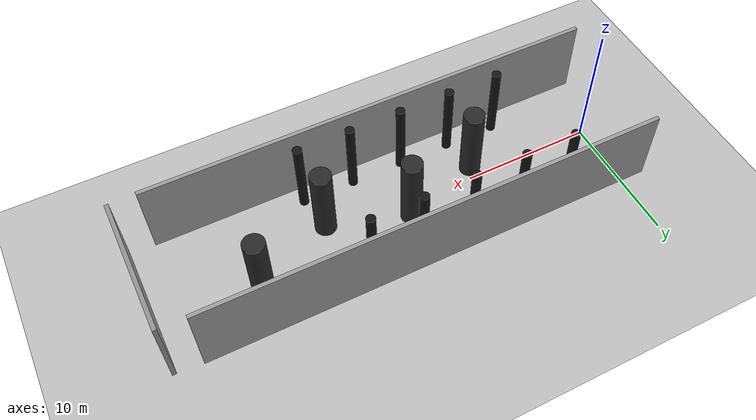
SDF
<sdf version="1.9">
 <world name="obstacle_demo">
  <physics type="ode">
   <max_step_size>0.004</max_step_size>
   <real_time_factor>1.0</real_time_factor>
   <real_time_update_rate>250</real_time_update_rate>
  </physics>
  <plugin name="gz::sim::systems::Physics" filename="gz-sim-physics-system"/>
  <plugin name="gz::sim::systems::UserCommands" filename="gz-sim-user-commands-system"/>
  <plugin name="gz::sim::systems::SceneBroadcaster" filename="gz-sim-scene-broadcaster-system"/>
  <plugin name="gz::sim::systems::Contact" filename="gz-sim-contact-system"/>
  <plugin name="gz::sim::systems::Imu" filename="gz-sim-imu-system"/>
  <plugin name="gz::sim::systems::AirPressure" filename="gz-sim-air-pressure-system"/>
  <plugin name="gz::sim::systems::NavSat" filename="gz-sim-navsat-system"/>
  <plugin name="gz::sim::systems::Sensors" filename="gz-sim-sensors-system">
   <render_engine>ogre2</render_engine>
  </plugin>
  <gravity>0 0 -9.8</gravity>
  <magnetic_field>6e-06 2.3e-05 -4.2e-05</magnetic_field>
  <atmosphere type="adiabatic"/>
  <scene>
   <grid>false</grid>
   <ambient>0.7 0.7 0.7 1</ambient>
   <background>0.82 0.85 0.9 1</background>
   <shadows>false</shadows>
  </scene>
  <model name="ground_plane">
   <static>true</static>
   <link name="link">
    <collision name="collision">
     <geometry><plane><normal>0 0 1</normal><size>1 1</size></plane></geometry>
    </collision>
    <visual name="visual">
     <geometry><plane><normal>0 0 1</normal><size>120 120</size></plane></geometry>
     <material><ambient>0.75 0.75 0.75 1</ambient><diffuse>0.75 0.75 0.75 1</diffuse></material>
    </visual>
   </link>
  </model>
  <light name="sun" type="directional">
   <pose>0 0 200 0 0 0</pose>
   <cast_shadows>false</cast_shadows>
   <intensity>1.0</intensity>
   <direction>-0.3 0.15 -0.94</direction>
   <diffuse>0.95 0.95 0.95 1</diffuse>
   <specular>0.2 0.2 0.2 1</specular>
   <attenuation><range>2000</range><constant>1</constant><linear>0</linear><quadratic>0</quadratic></attenuation>
  </light>
  <model name="corridor_wall_left">
   <static>true</static>
   <pose>15.50 5.20 3.00 0 0 0</pose>
   <link name="link">
    <collision name="collision"><geometry><box><size>35.00 0.30 6.00</size></box></geometry></collision>
    <visual name="visual">
     <geometry><box><size>35.00 0.30 6.00</size></box></geometry>
     <material><ambient>0.62 0.62 0.62 1</ambient><diffuse>0.62 0.62 0.62 1</diffuse></material>
    </visual>
   </link>
  </model>
  <model name="corridor_wall_right">
   <static>true</static>
   <pose>15.50 -5.20 3.00 0 0 0</pose>
   <link name="link">
    <collision name="collision"><geometry><box><size>35.00 0.30 6.00</size></box></geometry></collision>
    <visual name="visual">
     <geometry><box><size>35.00 0.30 6.00</size></box></geometry>
     <material><ambient>0.62 0.62 0.62 1</ambient><diffuse>0.62 0.62 0.62 1</diffuse></material>
    </visual>
   </link>
  </model>
  <model name="corridor_wall_end">
   <static>true</static>
   <pose>35.00 0.00 3.00 0 0 0</pose>
   <link name="link">
    <collision name="collision"><geometry><box><size>0.30 10.40 6.00</size></box></geometry></collision>
    <visual name="visual">
     <geometry><box><size>0.30 10.40 6.00</size></box></geometry>
     <material><ambient>0.58 0.58 0.58 1</ambient><diffuse>0.58 0.58 0.58 1</diffuse></material>
    </visual>
   </link>
  </model>
  <model name="pole_01">
   <static>true</static>
   <pose>4.00 3.75 3.00 0 0 0</pose>
   <link name="link">
    <collision name="collision">
     <geometry><cylinder><radius>0.35</radius><length>6.00</length></cylinder></geometry>
    </collision>
    <visual name="visual">
     <geometry><cylinder><radius>0.35</radius><length>6.00</length></cylinder></geometry>
     <material><ambient>0.08 0.08 0.08 1</ambient><diffuse>0.08 0.08 0.08 1</diffuse></material>
    </visual>
   </link>
  </model>
  <model name="pole_02">
   <static>true</static>
   <pose>8.00 3.75 3.00 0 0 0</pose>
   <link name="link">
    <collision name="collision">
     <geometry><cylinder><radius>0.35</radius><length>6.00</length></cylinder></geometry>
    </collision>
    <visual name="visual">
     <geometry><cylinder><radius>0.35</radius><length>6.00</length></cylinder></geometry>
     <material><ambient>0.08 0.08 0.08 1</ambient><diffuse>0.08 0.08 0.08 1</diffuse></material>
    </visual>
   </link>
  </model>
  <model name="pole_03">
   <static>true</static>
   <pose>12.00 3.75 3.00 0 0 0</pose>
   <link name="link">
    <collision name="collision">
     <geometry><cylinder><radius>0.35</radius><length>6.00</length></cylinder></geometry>
    </collision>
    <visual name="visual">
     <geometry><cylinder><radius>0.35</radius><length>6.00</length></cylinder></geometry>
     <material><ambient>0.08 0.08 0.08 1</ambient><diffuse>0.08 0.08 0.08 1</diffuse></material>
    </visual>
   </link>
  </model>
  <model name="pole_04">
   <static>true</static>
   <pose>16.00 3.75 3.00 0 0 0</pose>
   <link name="link">
    <collision name="collision">
     <geometry><cylinder><radius>0.35</radius><length>6.00</length></cylinder></geometry>
    </collision>
    <visual name="visual">
     <geometry><cylinder><radius>0.35</radius><length>6.00</length></cylinder></geometry>
     <material><ambient>0.08 0.08 0.08 1</ambient><diffuse>0.08 0.08 0.08 1</diffuse></material>
    </visual>
   </link>
  </model>
  <model name="pole_05">
   <static>true</static>
   <pose>20.00 3.75 3.00 0 0 0</pose>
   <link name="link">
    <collision name="collision">
     <geometry><cylinder><radius>0.35</radius><length>6.00</length></cylinder></geometry>
    </collision>
    <visual name="visual">
     <geometry><cylinder><radius>0.35</radius><length>6.00</length></cylinder></geometry>
     <material><ambient>0.08 0.08 0.08 1</ambient><diffuse>0.08 0.08 0.08 1</diffuse></material>
    </visual>
   </link>
  </model>
  <model name="pole_06">
   <static>true</static>
   <pose>6.00 -3.75 3.00 0 0 0</pose>
   <link name="link">
    <collision name="collision">
     <geometry><cylinder><radius>0.35</radius><length>6.00</length></cylinder></geometry>
    </collision>
    <visual name="visual">
     <geometry><cylinder><radius>0.35</radius><length>6.00</length></cylinder></geometry>
     <material><ambient>0.08 0.08 0.08 1</ambient><diffuse>0.08 0.08 0.08 1</diffuse></material>
    </visual>
   </link>
  </model>
  <model name="pole_07">
   <static>true</static>
   <pose>10.00 -3.75 3.00 0 0 0</pose>
   <link name="link">
    <collision name="collision">
     <geometry><cylinder><radius>0.35</radius><length>6.00</length></cylinder></geometry>
    </collision>
    <visual name="visual">
     <geometry><cylinder><radius>0.35</radius><length>6.00</length></cylinder></geometry>
     <material><ambient>0.08 0.08 0.08 1</ambient><diffuse>0.08 0.08 0.08 1</diffuse></material>
    </visual>
   </link>
  </model>
  <model name="pole_08">
   <static>true</static>
   <pose>14.00 -3.75 3.00 0 0 0</pose>
   <link name="link">
    <collision name="collision">
     <geometry><cylinder><radius>0.35</radius><length>6.00</length></cylinder></geometry>
    </collision>
    <visual name="visual">
     <geometry><cylinder><radius>0.35</radius><length>6.00</length></cylinder></geometry>
     <material><ambient>0.08 0.08 0.08 1</ambient><diffuse>0.08 0.08 0.08 1</diffuse></material>
    </visual>
   </link>
  </model>
  <model name="pole_09">
   <static>true</static>
   <pose>18.00 -3.75 3.00 0 0 0</pose>
   <link name="link">
    <collision name="collision">
     <geometry><cylinder><radius>0.35</radius><length>6.00</length></cylinder></geometry>
    </collision>
    <visual name="visual">
     <geometry><cylinder><radius>0.35</radius><length>6.00</length></cylinder></geometry>
     <material><ambient>0.08 0.08 0.08 1</ambient><diffuse>0.08 0.08 0.08 1</diffuse></material>
    </visual>
   </link>
  </model>
  <model name="pole_10">
   <static>true</static>
   <pose>22.00 -3.75 3.00 0 0 0</pose>
   <link name="link">
    <collision name="collision">
     <geometry><cylinder><radius>0.35</radius><length>6.00</length></cylinder></geometry>
    </collision>
    <visual name="visual">
     <geometry><cylinder><radius>0.35</radius><length>6.00</length></cylinder></geometry>
     <material><ambient>0.08 0.08 0.08 1</ambient><diffuse>0.08 0.08 0.08 1</diffuse></material>
    </visual>
   </link>
  </model>
  <model name="center_pole_01">
   <static>true</static>
   <pose>9.50 -0.95 3.00 0 0 0</pose>
   <link name="link">
    <collision name="collision">
     <geometry><cylinder><radius>0.80</radius><length>6.00</length></cylinder></geometry>
    </collision>
    <visual name="visual">
     <geometry><cylinder><radius>0.80</radius><length>6.00</length></cylinder></geometry>
     <material><ambient>0.16 0.16 0.16 1</ambient><diffuse>0.16 0.16 0.16 1</diffuse></material>
    </visual>
   </link>
  </model>
  <model name="center_pole_02">
   <static>true</static>
   <pose>15.50 0.95 3.00 0 0 0</pose>
   <link name="link">
    <collision name="collision">
     <geometry><cylinder><radius>0.80</radius><length>6.00</length></cylinder></geometry>
    </collision>
    <visual name="visual">
     <geometry><cylinder><radius>0.80</radius><length>6.00</length></cylinder></geometry>
     <material><ambient>0.16 0.16 0.16 1</ambient><diffuse>0.16 0.16 0.16 1</diffuse></material>
    </visual>
   </link>
  </model>
  <model name="center_pole_03">
   <static>true</static>
   <pose>21.50 -0.95 3.00 0 0 0</pose>
   <link name="link">
    <collision name="collision">
     <geometry><cylinder><radius>0.80</radius><length>6.00</length></cylinder></geometry>
    </collision>
    <visual name="visual">
     <geometry><cylinder><radius>0.80</radius><length>6.00</length></cylinder></geometry>
     <material><ambient>0.16 0.16 0.16 1</ambient><diffuse>0.16 0.16 0.16 1</diffuse></material>
    </visual>
   </link>
  </model>
  <model name="center_pole_04">
   <static>true</static>
   <pose>27.50 2.10 3.00 0 0 0</pose>
   <link name="link">
    <collision name="collision">
     <geometry><cylinder><radius>0.80</radius><length>6.00</length></cylinder></geometry>
    </collision>
    <visual name="visual">
     <geometry><cylinder><radius>0.80</radius><length>6.00</length></cylinder></geometry>
     <material><ambient>0.16 0.16 0.16 1</ambient><diffuse>0.16 0.16 0.16 1</diffuse></material>
    </visual>
   </link>
  </model>
 </world>
</sdf>
